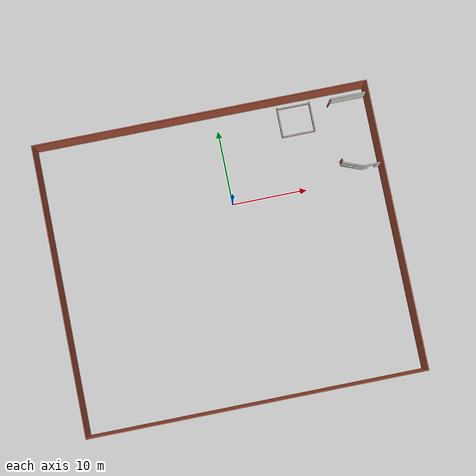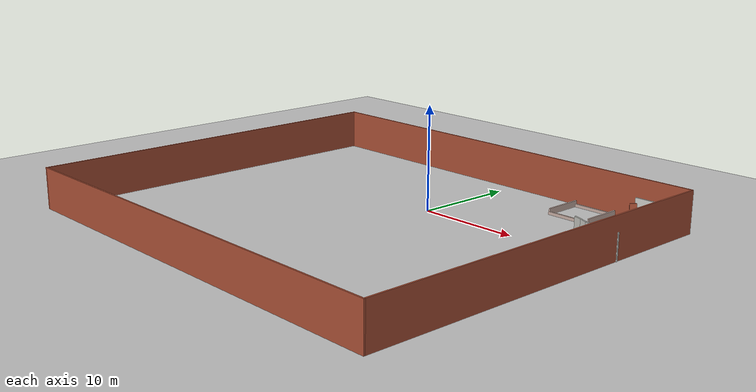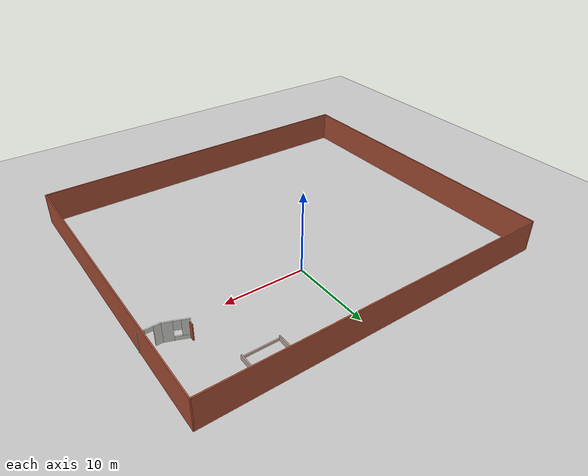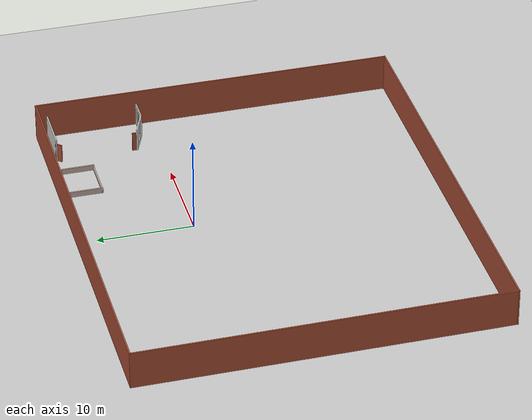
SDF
<sdf version="1.7">
 <world name="default">
  <model name="ground_plane">
   <static>1</static>
   <link name="link">
    <collision name="collision">
     <geometry><plane><normal>0 0 1</normal><size>100 100</size></plane></geometry>
     <surface><friction><ode><mu>100</mu><mu2>50</mu2></ode></friction></surface>
    </collision>
    <visual name="visual">
     <cast_shadows>0</cast_shadows>
     <geometry><plane><normal>0 0 1</normal><size>100 100</size></plane></geometry>
     <material>
      <script><uri>file://media/materials/scripts/gazebo.material</uri><name>Gazebo/Grey</name></script>
     </material>
    </visual>
   </link>
  </model>
  <model name="wall11">
   <pose>-2 -7 0 0 -0 0</pose>
   <link name="Wall_0">
    <collision name="Wall_0_Collision">
     <geometry><box><size>44.15 0.15 4</size></box></geometry>
     <pose>0 0 2 0 -0 0</pose>
    </collision>
    <visual name="Wall_0_Visual">
     <pose>0 0 2 0 -0 0</pose>
     <geometry><box><size>44.15 0.15 4</size></box></geometry>
     <material>
      <script><uri>file://media/materials/scripts/gazebo.material</uri><name>Gazebo/Bricks</name></script>
      <ambient>1 1 1 1</ambient>
     </material>
     <meta><layer>0</layer></meta>
    </visual>
    <pose>0 19 0 0 -0 0</pose>
   </link>
   <link name="Wall_2">
    <collision name="Wall_2_Collision">
     <geometry><box><size>38.15 0.15 4</size></box></geometry>
     <pose>0 0 2 0 -0 0</pose>
    </collision>
    <visual name="Wall_2_Visual">
     <pose>0 0 2 0 -0 0</pose>
     <geometry><box><size>38.15 0.15 4</size></box></geometry>
     <material>
      <script><uri>file://media/materials/scripts/gazebo.material</uri><name>Gazebo/Bricks</name></script>
      <ambient>1 1 1 1</ambient>
     </material>
     <meta><layer>0</layer></meta>
    </visual>
    <pose>22 0 0 0 -0 -1.5708</pose>
   </link>
   <link name="Wall_4">
    <collision name="Wall_4_Collision">
     <geometry><box><size>44.15 0.15 4</size></box></geometry>
     <pose>0 0 2 0 -0 0</pose>
    </collision>
    <visual name="Wall_4_Visual">
     <pose>0 0 2 0 -0 0</pose>
     <geometry><box><size>44.15 0.15 4</size></box></geometry>
     <material>
      <script><uri>file://media/materials/scripts/gazebo.material</uri><name>Gazebo/Bricks</name></script>
      <ambient>1 1 1 1</ambient>
     </material>
     <meta><layer>0</layer></meta>
    </visual>
    <pose>0 -19 0 0 -0 3.14159</pose>
   </link>
   <link name="Wall_6">
    <collision name="Wall_6_Collision">
     <geometry><box><size>38.15 0.15 4</size></box></geometry>
     <pose>0 0 2 0 -0 0</pose>
    </collision>
    <visual name="Wall_6_Visual">
     <pose>0 0 2 0 -0 0</pose>
     <geometry><box><size>38.15 0.15 4</size></box></geometry>
     <material>
      <script><uri>file://media/materials/scripts/gazebo.material</uri><name>Gazebo/Bricks</name></script>
      <ambient>1 1 1 1</ambient>
     </material>
     <meta><layer>0</layer></meta>
    </visual>
    <pose>-22 0 0 0 -0 1.5708</pose>
   </link>
   <static>1</static>
  </model>
  <model name="aim_area">
   <link name="Wall_10">
    <pose>6.351 -3.13846 0 0 -0 2.76762</pose>
    <visual name="Wall_10_Visual_1">
     <pose>0.58795 0 0.25 0 -0 0</pose>
     <geometry><box><size>1.70589 0.15 0.5</size></box></geometry>
     <material>
      <script><uri>file://media/materials/scripts/gazebo.material</uri><name>Gazebo/CeilingTiled</name></script>
      <ambient>1 1 1 1</ambient>
      <shader type="pixel"/>
     </material>
     <meta><layer>0</layer></meta>
    </visual>
    <visual name="Wall_10_Visual_0">
     <pose>-0.852943 0 1.25 0 -0 0</pose>
     <geometry><box><size>1.1759 0.15 2.5</size></box></geometry>
     <material>
      <script><uri>file://media/materials/scripts/gazebo.material</uri><name>Gazebo/CeilingTiled</name></script>
      <ambient>1 1 1 1</ambient>
      <shader type="pixel"/>
     </material>
     <meta><layer>0</layer></meta>
    </visual>
    <visual name="Wall_10_Visual_3">
     <pose>0.135006 0 1.9 0 -0 0</pose>
     <geometry><box><size>0.8 0.15 1.2</size></box></geometry>
     <material>
      <script><uri>file://media/materials/scripts/gazebo.material</uri><name>Gazebo/CeilingTiled</name></script>
      <ambient>1 1 1 1</ambient>
      <shader type="pixel"/>
     </material>
     <meta><layer>0</layer></meta>
    </visual>
    <visual name="Wall_10_Visual_2">
     <pose>0.98795 0 1.5 0 -0 0</pose>
     <geometry><box><size>0.905886 0.15 2</size></box></geometry>
     <material>
      <script><uri>file://media/materials/scripts/gazebo.material</uri><name>Gazebo/CeilingTiled</name></script>
      <ambient>1 1 1 1</ambient>
      <shader type="pixel"/>
     </material>
     <meta><layer>0</layer></meta>
    </visual>
    <collision name="Wall_10_Collision_0">
     <pose>-0.852943 0 1.25 0 -0 0</pose>
     <geometry><box><size>1.1759 0.15 2.5</size></box></geometry>
     <surface>
      <friction>
       <ode><mu>1</mu><mu2>1</mu2><fdir1>0 0 0</fdir1><slip1>0</slip1><slip2>0</slip2></ode>
       <torsional>
        <coefficient>1</coefficient>
        <patch_radius>0</patch_radius>
        <surface_radius>0</surface_radius>
        <use_patch_radius>1</use_patch_radius>
        <ode><slip>0</slip></ode>
       </torsional>
      </friction>
      <bounce><restitution_coefficient>0</restitution_coefficient><threshold>1e+06</threshold></bounce>
      <contact>
       <collide_without_contact>0</collide_without_contact>
       <collide_without_contact_bitmask>1</collide_without_contact_bitmask>
       <collide_bitmask>1</collide_bitmask>
       <ode>
        <soft_cfm>0</soft_cfm>
        <soft_erp>0.2</soft_erp>
        <kp>1e+13</kp>
        <kd>1</kd>
        <max_vel>0.01</max_vel>
        <min_depth>0</min_depth>
       </ode>
       <bullet>
        <split_impulse>1</split_impulse>
        <split_impulse_penetration_threshold>-0.01</split_impulse_penetration_threshold>
        <soft_cfm>0</soft_cfm>
        <soft_erp>0.2</soft_erp>
        <kp>1e+13</kp>
        <kd>1</kd>
       </bullet>
      </contact>
     </surface>
    </collision>
    <collision name="Wall_10_Collision_1">
     <pose>0.58795 0 0.25 0 -0 0</pose>
     <geometry><box><size>1.70589 0.15 0.5</size></box></geometry>
     <surface>
      <friction>
       <ode><mu>1</mu><mu2>1</mu2><fdir1>0 0 0</fdir1><slip1>0</slip1><slip2>0</slip2></ode>
       <torsional>
        <coefficient>1</coefficient>
        <patch_radius>0</patch_radius>
        <surface_radius>0</surface_radius>
        <use_patch_radius>1</use_patch_radius>
        <ode><slip>0</slip></ode>
       </torsional>
      </friction>
      <bounce><restitution_coefficient>0</restitution_coefficient><threshold>1e+06</threshold></bounce>
      <contact>
       <collide_without_contact>0</collide_without_contact>
       <collide_without_contact_bitmask>1</collide_without_contact_bitmask>
       <collide_bitmask>1</collide_bitmask>
       <ode>
        <soft_cfm>0</soft_cfm>
        <soft_erp>0.2</soft_erp>
        <kp>1e+13</kp>
        <kd>1</kd>
        <max_vel>0.01</max_vel>
        <min_depth>0</min_depth>
       </ode>
       <bullet>
        <split_impulse>1</split_impulse>
        <split_impulse_penetration_threshold>-0.01</split_impulse_penetration_threshold>
        <soft_cfm>0</soft_cfm>
        <soft_erp>0.2</soft_erp>
        <kp>1e+13</kp>
        <kd>1</kd>
       </bullet>
      </contact>
     </surface>
    </collision>
    <collision name="Wall_10_Collision_2">
     <pose>0.98795 0 1.5 0 -0 0</pose>
     <geometry><box><size>0.905886 0.15 2</size></box></geometry>
     <surface>
      <friction>
       <ode><mu>1</mu><mu2>1</mu2><fdir1>0 0 0</fdir1><slip1>0</slip1><slip2>0</slip2></ode>
       <torsional>
        <coefficient>1</coefficient>
        <patch_radius>0</patch_radius>
        <surface_radius>0</surface_radius>
        <use_patch_radius>1</use_patch_radius>
        <ode><slip>0</slip></ode>
       </torsional>
      </friction>
      <bounce><restitution_coefficient>0</restitution_coefficient><threshold>1e+06</threshold></bounce>
      <contact>
       <collide_without_contact>0</collide_without_contact>
       <collide_without_contact_bitmask>1</collide_without_contact_bitmask>
       <collide_bitmask>1</collide_bitmask>
       <ode>
        <soft_cfm>0</soft_cfm>
        <soft_erp>0.2</soft_erp>
        <kp>1e+13</kp>
        <kd>1</kd>
        <max_vel>0.01</max_vel>
        <min_depth>0</min_depth>
       </ode>
       <bullet>
        <split_impulse>1</split_impulse>
        <split_impulse_penetration_threshold>-0.01</split_impulse_penetration_threshold>
        <soft_cfm>0</soft_cfm>
        <soft_erp>0.2</soft_erp>
        <kp>1e+13</kp>
        <kd>1</kd>
       </bullet>
      </contact>
     </surface>
    </collision>
    <collision name="Wall_10_Collision_3">
     <pose>0.135006 0 1.9 0 -0 0</pose>
     <geometry><box><size>0.8 0.15 1.2</size></box></geometry>
     <surface>
      <friction>
       <ode><mu>1</mu><mu2>1</mu2><fdir1>0 0 0</fdir1><slip1>0</slip1><slip2>0</slip2></ode>
       <torsional>
        <coefficient>1</coefficient>
        <patch_radius>0</patch_radius>
        <surface_radius>0</surface_radius>
        <use_patch_radius>1</use_patch_radius>
        <ode><slip>0</slip></ode>
       </torsional>
      </friction>
      <bounce><restitution_coefficient>0</restitution_coefficient><threshold>1e+06</threshold></bounce>
      <contact>
       <collide_without_contact>0</collide_without_contact>
       <collide_without_contact_bitmask>1</collide_without_contact_bitmask>
       <collide_bitmask>1</collide_bitmask>
       <ode>
        <soft_cfm>0</soft_cfm>
        <soft_erp>0.2</soft_erp>
        <kp>1e+13</kp>
        <kd>1</kd>
        <max_vel>0.01</max_vel>
        <min_depth>0</min_depth>
       </ode>
       <bullet>
        <split_impulse>1</split_impulse>
        <split_impulse_penetration_threshold>-0.01</split_impulse_penetration_threshold>
        <soft_cfm>0</soft_cfm>
        <soft_erp>0.2</soft_erp>
        <kp>1e+13</kp>
        <kd>1</kd>
       </bullet>
      </contact>
     </surface>
    </collision>
   </link>
   <link name="Wall_11">
    <pose>5.1147 -2.35573 0 0 -0 1.5708</pose>
    <inertial>
     <inertia><ixx>0</ixx><ixy>0</ixy><ixz>0</ixz><iyy>0</iyy><iyz>0</iyz><izz>0</izz></inertia>
     <mass>0</mass>
    </inertial>
    <visual name="Wall_11_Visual">
     <pose>0 0 1.05 0 -0 0</pose>
     <geometry><box><size>0.506266 0.15 2.1</size></box></geometry>
     <material>
      <script><uri>file://media/materials/scripts/gazebo.material</uri><name>Gazebo/Bricks</name></script>
      <ambient>1 1 1 1</ambient>
      <shader type="pixel"/>
     </material>
     <meta><layer>0</layer></meta>
    </visual>
    <collision name="Wall_11_Collision">
     <pose>0 0 1.05 0 -0 0</pose>
     <geometry><box><size>0.506266 0.15 2.1</size></box></geometry>
     <surface>
      <friction>
       <ode><mu>1</mu><mu2>1</mu2><fdir1>0 0 0</fdir1><slip1>0</slip1><slip2>0</slip2></ode>
       <torsional>
        <coefficient>1</coefficient>
        <patch_radius>0</patch_radius>
        <surface_radius>0</surface_radius>
        <use_patch_radius>1</use_patch_radius>
        <ode><slip>0</slip></ode>
       </torsional>
      </friction>
      <bounce><restitution_coefficient>0</restitution_coefficient><threshold>1e+06</threshold></bounce>
      <contact>
       <collide_without_contact>0</collide_without_contact>
       <collide_without_contact_bitmask>1</collide_without_contact_bitmask>
       <collide_bitmask>1</collide_bitmask>
       <ode>
        <soft_cfm>0</soft_cfm>
        <soft_erp>0.2</soft_erp>
        <kp>1e+13</kp>
        <kd>1</kd>
        <max_vel>0.01</max_vel>
        <min_depth>0</min_depth>
       </ode>
       <bullet>
        <split_impulse>1</split_impulse>
        <split_impulse_penetration_threshold>-0.01</split_impulse_penetration_threshold>
        <soft_cfm>0</soft_cfm>
        <soft_erp>0.2</soft_erp>
        <kp>1e+13</kp>
        <kd>1</kd>
       </bullet>
      </contact>
     </surface>
    </collision>
   </link>
   <link name="Wall_15">
    <pose>5.14614 5.66775 0 0 -0 0.786576</pose>
    <visual name="Wall_15_Visual">
     <pose>0 0 1 0 -0 0</pose>
     <geometry><box><size>0.75 0.15 2</size></box></geometry>
     <material>
      <script><uri>file://media/materials/scripts/gazebo.material</uri><name>Gazebo/Bricks</name></script>
      <ambient>1 1 1 1</ambient>
      <shader type="pixel"/>
     </material>
     <meta><layer>0</layer></meta>
    </visual>
    <collision name="Wall_15_Collision">
     <pose>0 0 1 0 -0 0</pose>
     <geometry><box><size>0.75 0.15 2</size></box></geometry>
     <surface>
      <friction>
       <ode><mu>1</mu><mu2>1</mu2><fdir1>0 0 0</fdir1><slip1>0</slip1><slip2>0</slip2></ode>
       <torsional>
        <coefficient>1</coefficient>
        <patch_radius>0</patch_radius>
        <surface_radius>0</surface_radius>
        <use_patch_radius>1</use_patch_radius>
        <ode><slip>0</slip></ode>
       </torsional>
      </friction>
      <bounce><restitution_coefficient>0</restitution_coefficient><threshold>1e+06</threshold></bounce>
      <contact>
       <collide_without_contact>0</collide_without_contact>
       <collide_without_contact_bitmask>1</collide_without_contact_bitmask>
       <collide_bitmask>1</collide_bitmask>
       <ode>
        <soft_cfm>0</soft_cfm>
        <soft_erp>0.2</soft_erp>
        <kp>1e+13</kp>
        <kd>1</kd>
        <max_vel>0.01</max_vel>
        <min_depth>0</min_depth>
       </ode>
       <bullet>
        <split_impulse>1</split_impulse>
        <split_impulse_penetration_threshold>-0.01</split_impulse_penetration_threshold>
        <soft_cfm>0</soft_cfm>
        <soft_erp>0.2</soft_erp>
        <kp>1e+13</kp>
        <kd>1</kd>
       </bullet>
      </contact>
     </surface>
    </collision>
   </link>
   <link name="Wall_17">
    <pose>7.54238 5.88204 0 0 0 -8.8e-05</pose>
    <visual name="Wall_17_Visual">
     <pose>0 0 1.25 0 -0 0</pose>
     <geometry><box><size>4.75 0.15 2.5</size></box></geometry>
     <material>
      <script><uri>file://media/materials/scripts/gazebo.material</uri><name>Gazebo/CeilingTiled</name></script>
      <ambient>1 1 1 1</ambient>
      <shader type="pixel"/>
     </material>
     <meta><layer>0</layer></meta>
    </visual>
    <collision name="Wall_17_Collision">
     <pose>0 0 1.25 0 -0 0</pose>
     <geometry><box><size>4.75 0.15 2.5</size></box></geometry>
     <surface>
      <friction>
       <ode><mu>1</mu><mu2>1</mu2><fdir1>0 0 0</fdir1><slip1>0</slip1><slip2>0</slip2></ode>
       <torsional>
        <coefficient>1</coefficient>
        <patch_radius>0</patch_radius>
        <surface_radius>0</surface_radius>
        <use_patch_radius>1</use_patch_radius>
        <ode><slip>0</slip></ode>
       </torsional>
      </friction>
      <bounce><restitution_coefficient>0</restitution_coefficient><threshold>1e+06</threshold></bounce>
      <contact>
       <collide_without_contact>0</collide_without_contact>
       <collide_without_contact_bitmask>1</collide_without_contact_bitmask>
       <collide_bitmask>1</collide_bitmask>
       <ode>
        <soft_cfm>0</soft_cfm>
        <soft_erp>0.2</soft_erp>
        <kp>1e+13</kp>
        <kd>1</kd>
        <max_vel>0.01</max_vel>
        <min_depth>0</min_depth>
       </ode>
       <bullet>
        <split_impulse>1</split_impulse>
        <split_impulse_penetration_threshold>-0.01</split_impulse_penetration_threshold>
        <soft_cfm>0</soft_cfm>
        <soft_erp>0.2</soft_erp>
        <kp>1e+13</kp>
        <kd>1</kd>
       </bullet>
      </contact>
     </surface>
    </collision>
   </link>
   <link name="Wall_7">
    <pose>8.8778 -3.63745 -0 0 -0 0</pose>
    <visual name="Wall_7_Visual_0">
     <pose>-0.857483 0 1.25 0 -0 0</pose>
     <geometry><box><size>0.785033 0.15 2.5</size></box></geometry>
     <material>
      <script><uri>file://media/materials/scripts/gazebo.material</uri><name>Gazebo/CeilingTiled</name></script>
      <ambient>1 1 1 1</ambient>
      <shader type="pixel"/>
     </material>
     <meta><layer>0</layer></meta>
    </visual>
    <visual name="Wall_7_Visual_1">
     <pose>0.842517 0 1.25 0 -0 0</pose>
     <geometry><box><size>0.814967 0.15 2.5</size></box></geometry>
     <material>
      <script><uri>file://media/materials/scripts/gazebo.material</uri><name>Gazebo/CeilingTiled</name></script>
      <ambient>1 1 1 1</ambient>
      <shader type="pixel"/>
     </material>
     <meta><layer>0</layer></meta>
    </visual>
    <visual name="Wall_7_Visual_2">
     <pose>-0.014967 0 2.25 0 -0 0</pose>
     <geometry><box><size>0.9 0.15 0.5</size></box></geometry>
     <material>
      <script><uri>file://media/materials/scripts/gazebo.material</uri><name>Gazebo/CeilingTiled</name></script>
      <ambient>1 1 1 1</ambient>
      <shader type="pixel"/>
     </material>
     <meta><layer>0</layer></meta>
    </visual>
    <collision name="Wall_7_Collision_0">
     <pose>-0.857483 0 1.25 0 -0 0</pose>
     <geometry><box><size>0.785033 0.15 2.5</size></box></geometry>
     <surface>
      <friction>
       <ode><mu>1</mu><mu2>1</mu2><fdir1>0 0 0</fdir1><slip1>0</slip1><slip2>0</slip2></ode>
       <torsional>
        <coefficient>1</coefficient>
        <patch_radius>0</patch_radius>
        <surface_radius>0</surface_radius>
        <use_patch_radius>1</use_patch_radius>
        <ode><slip>0</slip></ode>
       </torsional>
      </friction>
      <bounce><restitution_coefficient>0</restitution_coefficient><threshold>1e+06</threshold></bounce>
      <contact>
       <collide_without_contact>0</collide_without_contact>
       <collide_without_contact_bitmask>1</collide_without_contact_bitmask>
       <collide_bitmask>1</collide_bitmask>
       <ode>
        <soft_cfm>0</soft_cfm>
        <soft_erp>0.2</soft_erp>
        <kp>1e+13</kp>
        <kd>1</kd>
        <max_vel>0.01</max_vel>
        <min_depth>0</min_depth>
       </ode>
       <bullet>
        <split_impulse>1</split_impulse>
        <split_impulse_penetration_threshold>-0.01</split_impulse_penetration_threshold>
        <soft_cfm>0</soft_cfm>
        <soft_erp>0.2</soft_erp>
        <kp>1e+13</kp>
        <kd>1</kd>
       </bullet>
      </contact>
     </surface>
    </collision>
    <collision name="Wall_7_Collision_2">
     <pose>-0.014967 0 2.25 0 -0 0</pose>
     <geometry><box><size>0.9 0.15 0.5</size></box></geometry>
     <surface>
      <friction>
       <ode><mu>1</mu><mu2>1</mu2><fdir1>0 0 0</fdir1><slip1>0</slip1><slip2>0</slip2></ode>
       <torsional>
        <coefficient>1</coefficient>
        <patch_radius>0</patch_radius>
        <surface_radius>0</surface_radius>
        <use_patch_radius>1</use_patch_radius>
        <ode><slip>0</slip></ode>
       </torsional>
      </friction>
      <bounce><restitution_coefficient>0</restitution_coefficient><threshold>1e+06</threshold></bounce>
      <contact>
       <collide_without_contact>0</collide_without_contact>
       <collide_without_contact_bitmask>1</collide_without_contact_bitmask>
       <collide_bitmask>1</collide_bitmask>
       <ode>
        <soft_cfm>0</soft_cfm>
        <soft_erp>0.2</soft_erp>
        <kp>1e+13</kp>
        <kd>1</kd>
        <max_vel>0.01</max_vel>
        <min_depth>0</min_depth>
       </ode>
       <bullet>
        <split_impulse>1</split_impulse>
        <split_impulse_penetration_threshold>-0.01</split_impulse_penetration_threshold>
        <soft_cfm>0</soft_cfm>
        <soft_erp>0.2</soft_erp>
        <kp>1e+13</kp>
        <kd>1</kd>
       </bullet>
      </contact>
     </surface>
    </collision>
    <collision name="Wall_7_Collision_1">
     <pose>0.842517 0 1.25 0 -0 0</pose>
     <geometry><box><size>0.814967 0.15 2.5</size></box></geometry>
     <surface>
      <friction>
       <ode><mu>1</mu><mu2>1</mu2><fdir1>0 0 0</fdir1><slip1>0</slip1><slip2>0</slip2></ode>
       <torsional>
        <coefficient>1</coefficient>
        <patch_radius>0</patch_radius>
        <surface_radius>0</surface_radius>
        <use_patch_radius>1</use_patch_radius>
        <ode><slip>0</slip></ode>
       </torsional>
      </friction>
      <bounce><restitution_coefficient>0</restitution_coefficient><threshold>1e+06</threshold></bounce>
      <contact>
       <collide_without_contact>0</collide_without_contact>
       <collide_without_contact_bitmask>1</collide_without_contact_bitmask>
       <collide_bitmask>1</collide_bitmask>
       <ode>
        <soft_cfm>0</soft_cfm>
        <soft_erp>0.2</soft_erp>
        <kp>1e+13</kp>
        <kd>1</kd>
        <max_vel>0.01</max_vel>
        <min_depth>0</min_depth>
       </ode>
       <bullet>
        <split_impulse>1</split_impulse>
        <split_impulse_penetration_threshold>-0.01</split_impulse_penetration_threshold>
        <soft_cfm>0</soft_cfm>
        <soft_erp>0.2</soft_erp>
        <kp>1e+13</kp>
        <kd>1</kd>
       </bullet>
      </contact>
     </surface>
    </collision>
   </link>
   <static>1</static>
   <pose>10.0075 4.96947 0 0 -0 0</pose>
  </model>
  <model name="Lence">
   <pose>6.3475 5.72583 0 0 -0 0</pose>
   <link name="Wall_12">
    <collision name="Wall_12_Collision">
     <geometry><box><size>3.94165 0.15 0.6</size></box></geometry>
     <pose>0 0 0.3 0 -0 0</pose>
    </collision>
    <visual name="Wall_12_Visual">
     <pose>0 0 0.3 0 -0 0</pose>
     <geometry><box><size>3.94165 0.15 0.6</size></box></geometry>
     <material>
      <script><uri>file://media/materials/scripts/gazebo.material</uri><name>Gazebo/Grey</name></script>
      <ambient>0.760784 0.662745 0.627451 1</ambient>
     </material>
     <meta><layer>0</layer></meta>
    </visual>
    <pose>1.9225 3.755 0 0 -0 -1.5708</pose>
   </link>
   <link name="Wall_17">
    <collision name="Wall_17_Collision">
     <geometry><box><size>4.5 0.15 0.3</size></box></geometry>
     <pose>0 0 0.15 0 -0 0</pose>
    </collision>
    <visual name="Wall_17_Visual">
     <pose>0 0 0.15 0 -0 0</pose>
     <geometry><box><size>4.5 0.15 0.3</size></box></geometry>
     <material>
      <script><uri>file://media/materials/scripts/gazebo.material</uri><name>Gazebo/Grey</name></script>
      <ambient>0.760784 0.662745 0.627451 1</ambient>
     </material>
     <meta><layer>0</layer></meta>
    </visual>
    <pose>4.0975 5.61014 0 0 -0 0</pose>
   </link>
   <link name="Wall_18">
    <collision name="Wall_18_Collision">
     <geometry><box><size>3.94165 0.15 0.6</size></box></geometry>
     <pose>0 0 0.3 0 -0 0</pose>
    </collision>
    <visual name="Wall_18_Visual">
     <pose>0 0 0.3 0 -0 0</pose>
     <geometry><box><size>3.94165 0.15 0.6</size></box></geometry>
     <material>
      <script><uri>file://media/materials/scripts/gazebo.material</uri><name>Gazebo/Grey</name></script>
      <ambient>0.760784 0.662745 0.627451 1</ambient>
     </material>
     <meta><layer>0</layer></meta>
    </visual>
    <pose>6.2725 3.755 0 0 -0 -1.5708</pose>
   </link>
   <link name="Wall_8">
    <collision name="Wall_8_Collision">
     <geometry><box><size>4.5 0.15 0.3</size></box></geometry>
     <pose>0 0 0.15 0 -0 0</pose>
    </collision>
    <visual name="Wall_8_Visual">
     <pose>0 0 0.15 0 -0 0</pose>
     <geometry><box><size>4.5 0.15 0.3</size></box></geometry>
     <material>
      <script><uri>file://media/materials/scripts/gazebo.material</uri><name>Gazebo/Grey</name></script>
      <ambient>0.760784 0.662745 0.627451 1</ambient>
     </material>
     <meta><layer>0</layer></meta>
    </visual>
    <pose>4.0905 1.81317 0 0 -0 3.14159</pose>
   </link>
   <static>1</static>
  </model>
 </world>
</sdf>
